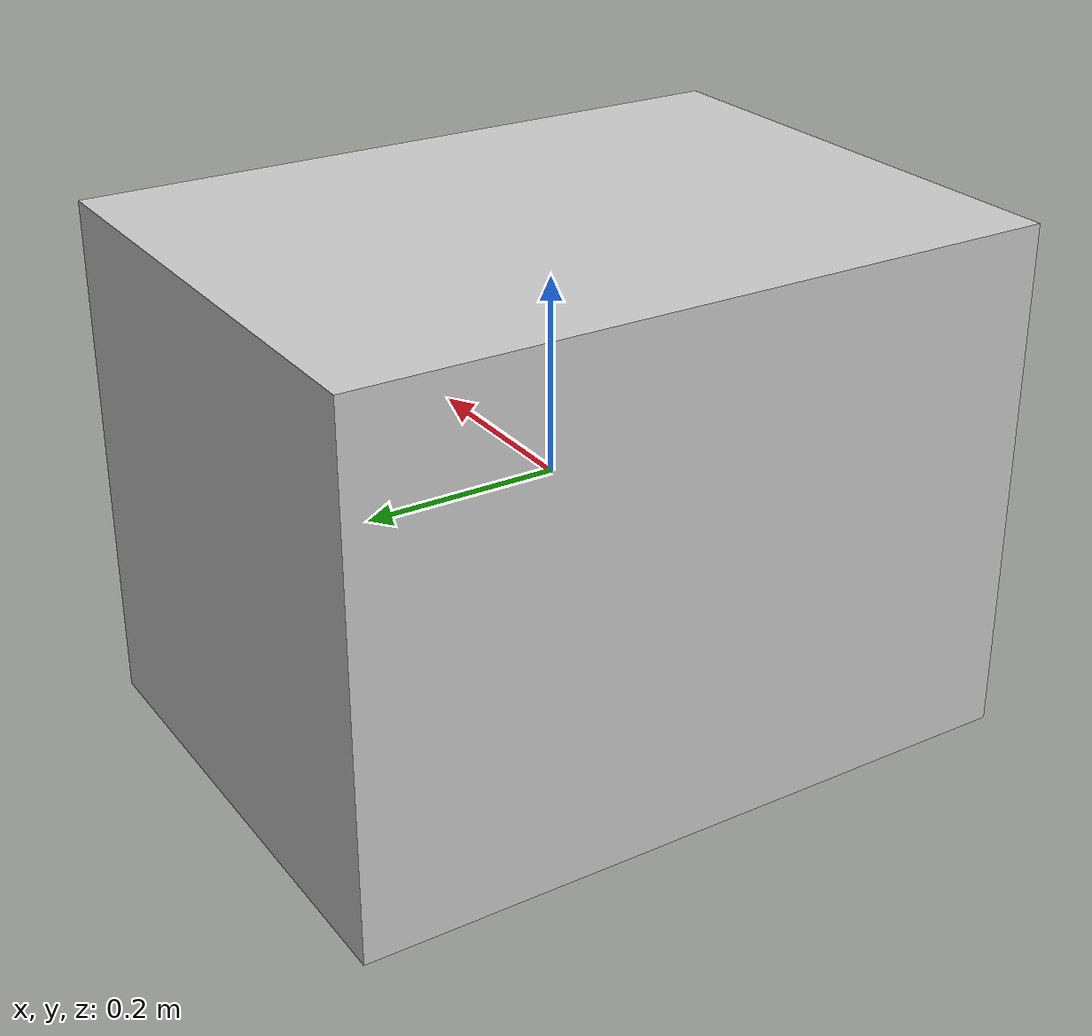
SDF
<?xml version='1.0'?>
<sdf version="1.9">
<model name="rover" canonical_link="Chassis_link">
  <joint name="Back Left Wheel Connection_link_joint" type="continuous">
    <pose relative_to="Left_Rocker_link">-0.040213 0.277630 -0.040843 -0.000000 1.570796 0.000000</pose>
    <parent>Left_Rocker_link</parent>
    <child>Back_Left_Wheel_Connection_link</child>
    <axis>
      <limit>
        <lower>0</lower>
        <upper>0</upper>
        <effort>0.000000</effort>
        <velocity>0.000000</velocity>
      </limit>
      <xyz>0.000000 0.000000 1.000000</xyz>
    </axis>
  </joint>
  <joint name="Back Left Wheel_link_joint" type="continuous">
    <pose relative_to="Back_Left_Wheel_Connection_link">-0.000277 -0.000140 -0.224216 0.000000 -1.570796 0.000000</pose>
    <parent>Back_Left_Wheel_Connection_link</parent>
    <child>Back_Left_Wheel_link</child>
    <axis>
      <limit>
        <lower>0</lower>
        <upper>0</upper>
        <effort>0.000000</effort>
        <velocity>0.000000</velocity>
      </limit>
      <xyz>0.000000 0.000000 1.000000</xyz>
    </axis>
  </joint>
  <joint name="Back Right Wheel_link_joint" type="continuous">
    <pose relative_to="Back_right_Wheel_Connection_link">-0.001001 -0.000072 -0.224364 0.000000 -1.570796 0.000000</pose>
    <parent>Back_right_Wheel_Connection_link</parent>
    <child>Back_Right_Wheel_link</child>
    <axis>
      <limit>
        <lower>0</lower>
        <upper>0</upper>
        <effort>0.000000</effort>
        <velocity>0.000000</velocity>
      </limit>
      <xyz>0.000000 0.000000 1.000000</xyz>
    </axis>
  </joint>
  <joint name="Back right Wheel Connection_link_joint" type="continuous">
    <pose relative_to="Right_Rocker_link">-0.039199 0.277668 0.039794 -0.000000 1.570796 0.000000</pose>
    <parent>Right_Rocker_link</parent>
    <child>Back_right_Wheel_Connection_link</child>
    <axis>
      <limit>
        <lower>0</lower>
        <upper>0</upper>
        <effort>0.000000</effort>
        <velocity>0.000000</velocity>
      </limit>
      <xyz>0.000000 0.000000 1.000000</xyz>
    </axis>
  </joint>
  <joint name="Front Left Wheel Connection_link_joint" type="continuous">
    <pose relative_to="Left_Rocker_link">-0.040213 -0.279250 -0.041051 -0.000000 1.570796 0.000000</pose>
    <parent>Left_Rocker_link</parent>
    <child>Front_Left_Wheel_Connection_link</child>
    <axis>
      <limit>
        <lower>0</lower>
        <upper>0</upper>
        <effort>0.000000</effort>
        <velocity>0.000000</velocity>
      </limit>
      <xyz>0.000000 0.000000 1.000000</xyz>
    </axis>
  </joint>
  <joint name="Front Left Wheel_link_joint" type="continuous">
    <pose relative_to="Front_Left_Wheel_Connection_link">-0.000405 0.000234 -0.224593 0.000000 -1.570796 0.000000</pose>
    <parent>Front_Left_Wheel_Connection_link</parent>
    <child>Front_Left_Wheel_link</child>
    <axis>
      <limit>
        <lower>0</lower>
        <upper>0</upper>
        <effort>0.000000</effort>
        <velocity>0.000000</velocity>
      </limit>
      <xyz>0.000000 0.000000 1.000000</xyz>
    </axis>
  </joint>
  <joint name="Front Right Wheel Connection_link_joint" type="continuous">
    <pose relative_to="Right_Rocker_link">-0.039199 -0.279811 0.039779 -0.000000 1.570796 0.000000</pose>
    <parent>Right_Rocker_link</parent>
    <child>Front_Right_Wheel_Connection_link</child>
    <axis>
      <limit>
        <lower>0</lower>
        <upper>0</upper>
        <effort>0.000000</effort>
        <velocity>0.000000</velocity>
      </limit>
      <xyz>0.000000 0.000000 1.000000</xyz>
    </axis>
  </joint>
  <joint name="Front Right Wheel_link_joint" type="continuous">
    <pose relative_to="Front_Right_Wheel_Connection_link">-0.001015 0.000984 -0.224364 -0.000000 -1.570796 0.000000</pose>
    <parent>Front_Right_Wheel_Connection_link</parent>
    <child>Front_Right_Wheel_link</child>
    <axis>
      <limit>
        <lower>0</lower>
        <upper>0</upper>
        <effort>0.000000</effort>
        <velocity>0.000000</velocity>
      </limit>
      <xyz>0.000000 0.000000 1.000000</xyz>
    </axis>
  </joint>
  <joint name="Left Rocker_link_joint" type="revolute">
    <pose relative_to="Chassis_link">0.316939 0.035009 -0.031693 0.000000 -1.570796 0.000000</pose>
    <parent>Chassis_link</parent>
    <child>Left_Rocker_link</child>
    <axis>
      <limit>
        <lower>-1.000000</lower>
        <upper>1.000000</upper>
        <effort>0.000000</effort>
        <velocity>0.000000</velocity>
      </limit>
      <xyz>0.000000 0.000000 1.000000</xyz>
    </axis>
  </joint>
  <joint name="Right Rocker_link_joint" type="revolute">
    <pose relative_to="Chassis_link">-0.326391 0.034904 -0.032707 0.000000 -1.570796 0.000000</pose>
    <parent>Chassis_link</parent>
    <child>Right_Rocker_link</child>
    <axis>
      <limit>
        <lower>-1.000000</lower>
        <upper>1.000000</upper>
        <effort>0.000000</effort>
        <velocity>0.000000</velocity>
      </limit>
      <xyz>0.000000 0.000000 1.000000</xyz>
    </axis>
  </joint>
  <link name="Back_Left_Wheel_Connection_link">
    <collision name="Back Left Wheel Connection_collision">
      <pose relative_to="Back_Left_Wheel_Connection_link">-0.000000 -0.000000 -0.000000 0.000000 0.000000 0.000000</pose>
      <geometry>
        <mesh>
          <uri>package://rover/meshes/dae/rover_assm.263.dae</uri>
          <scale>0.001020 0.001020 0.001020</scale>
        </mesh>
      </geometry>
      <surface>
        <contact/>
      </surface>
    </collision>
    <inertial>
      <inertia>
        <ixx>0.007968</ixx>
        <ixy>0.000000</ixy>
        <ixz>0.000000</ixz>
        <iyy>0.006673</iyy>
        <iyz>-0.002185</iyz>
        <izz>0.001483</izz>
      </inertia>
      <pose relative_to="Back_Left_Wheel_Connection_link">-0.034999 -0.000141 -0.080752 0.000000 0.000000 0.000000</pose>
      <mass>1.000000</mass>
    </inertial>
  </link>
  <link name="Back_Left_Wheel_link">
    <collision name="Back Left Wheel_collision">
      <pose relative_to="Back_Left_Wheel_link">-0.000149 -0.000000 -0.000229 -3.141593 -0.000000 -3.141593</pose>
      <geometry>
        <cylinder>
          <radius>0.152590</radius>
          <length>0.127483</length>
        </cylinder>
      </geometry>
      <surface>
        <contact/>
      </surface>
    </collision>
    <visual name="Back Left Wheel">
      <material>
        <diffuse>0.800000 0.800000 0.800000 1.000000</diffuse>
        <specular>0.400000 0.400000 0.400000 0.498039</specular>
        <emissive>0.000000 0.000000 0.000000 1.000000</emissive>
      </material>
      <pose relative_to="Back_Left_Wheel_link">-0.000148 -0.000000 -0.000229 -0.000000 1.570796 0.000000</pose>
      <geometry>
        <cylinder>
          <radius>0.063741</radius>
          <length>0.304673</length>
        </cylinder>
      </geometry>
    </visual>
  </link>
  <link name="Back_Right_Wheel_link">
    <collision name="Back Right Wheel_collision">
      <pose relative_to="Back_Right_Wheel_link">-0.000000 0.000000 0.000000 -3.141593 -0.000000 -3.141593</pose>
      <geometry>
        <cylinder>
          <radius>0.152590</radius>
          <length>0.127483</length>
        </cylinder>
      </geometry>
      <surface>
        <contact/>
      </surface>
    </collision>
    <visual name="Back Right Wheel">
      <material>
        <diffuse>0.800000 0.800000 0.800000 1.000000</diffuse>
        <specular>0.400000 0.400000 0.400000 0.498039</specular>
        <emissive>0.000000 0.000000 0.000000 1.000000</emissive>
      </material>
      <pose relative_to="Back_Right_Wheel_link">0.000000 0.000000 -0.000000 -0.000000 1.570796 0.000000</pose>
      <geometry>
        <cylinder>
          <radius>0.063741</radius>
          <length>0.304673</length>
        </cylinder>
      </geometry>
    </visual>
  </link>
  <link name="Back_right_Wheel_Connection_link">
    <collision name="Back right Wheel Connection_collision">
      <pose relative_to="Back_right_Wheel_Connection_link">-0.000000 0.000000 0.000000 0.000000 0.000000 0.000000</pose>
      <geometry>
        <mesh>
          <uri>package://rover/meshes/dae/rover_assm.273.dae</uri>
          <scale>0.001020 0.001020 0.001020</scale>
        </mesh>
      </geometry>
      <surface>
        <contact/>
      </surface>
    </collision>
    <inertial>
      <inertia>
        <ixx>0.007971</ixx>
        <ixy>0.000000</ixy>
        <ixz>-0.000000</ixz>
        <iyy>0.006675</iyy>
        <iyz>0.002187</iyz>
        <izz>0.001484</izz>
      </inertia>
      <pose relative_to="Back_right_Wheel_Connection_link">0.033951 -0.000071 -0.080752 0.000000 0.000000 0.000000</pose>
      <mass>1.000000</mass>
    </inertial>
  </link>
  <link name="Chassis_link">
    <collision name="Chassis_collision">
      <pose relative_to="Chassis_link">-0.000000 0.036421 0.000000 0.000000 0.000000 -0.000000</pose>
      <geometry>
        <box>
          <size>0.509469 0.629976 0.354739</size>
        </box>
      </geometry>
      <surface>
        <contact/>
      </surface>
    </collision>
    <inertial>
      <inertia>
        <ixx>0.045943</ixx>
        <ixy>-0.000000</ixy>
        <ixz>0.000000</ixz>
        <iyy>0.064649</iyy>
        <iyz>0.000000</iyz>
        <izz>0.064499</izz>
      </inertia>
      <pose relative_to="Chassis_link">0.000000 0.000000 0.000000 0.000000 0.000000 0.000000</pose>
      <mass>1.000000</mass>
    </inertial>
    <visual name="Chassis">
      <material>
        <diffuse>0.800000 0.800000 0.800000 1.000000</diffuse>
        <specular>0.011765 0.011765 0.011765 0.015686</specular>
        <emissive>0.000000 0.000000 0.000000 1.000000</emissive>
      </material>
      <pose relative_to="Chassis_link">0.000000 0.000000 0.000000 0.000000 0.000000 0.000000</pose>
      <geometry>
        <box>
          <size>0.524175 0.706562 0.525888</size>
        </box>
      </geometry>
    </visual>
  </link>
  <link name="Front_Left_Wheel_Connection_link">
    <collision name="Front Left Wheel Connection_collision">
      <pose relative_to="Front_Left_Wheel_Connection_link">0.000000 -0.000000 0.000000 0.000000 0.000000 0.000000</pose>
      <geometry>
        <mesh>
          <uri>file://rover/meshes/dae/rover_assm.266.dae</uri>
          <scale>0.001020 0.001020 0.001020</scale>
        </mesh>
      </geometry>
      <surface>
        <contact/>
      </surface>
    </collision>
    <inertial>
      <inertia>
        <ixx>0.007968</ixx>
        <ixy>0.000000</ixy>
        <ixz>0.000000</ixz>
        <iyy>0.006673</iyy>
        <iyz>-0.002185</iyz>
        <izz>0.001483</izz>
      </inertia>
      <pose relative_to="Front_Left_Wheel_Connection_link">-0.035207 0.000317 -0.080752 0.000000 0.000000 0.000000</pose>
      <mass>1.000000</mass>
    </inertial>
    <visual name="Front Left Wheel Connection">
      <material>
        <diffuse>0.800000 0.800000 0.800000 1.000000</diffuse>
        <specular>0.400000 0.400000 0.400000 0.498039</specular>
        <emissive>0.000000 0.000000 0.000000 1.000000</emissive>
      </material>
      <pose relative_to="Front_Left_Wheel_Connection_link">0.000000 -0.000000 0.000000 0.000000 0.000000 0.000000</pose>
      <geometry>
        <mesh>
          <uri>file://rover/meshes/dae/rover_assm.266.dae</uri>
          <scale>0.001020 0.001020 0.001020</scale>
        </mesh>
      </geometry>
    </visual>
  </link>
  <link name="Front_Left_Wheel_link">
    <collision name="Front Left Wheel_collision">
      <pose relative_to="Front_Left_Wheel_link">0.000149 -0.000000 0.000229 -3.141593 -0.000000 -3.141593</pose>
      <geometry>
        <cylinder>
          <radius>0.152957</radius>
          <length>0.127790</length>
        </cylinder>
      </geometry>
      <surface>
        <contact/>
      </surface>
    </collision>
    <inertial>
      <inertia>
        <ixx>0.008751</ixx>
        <ixy>-0.000000</ixy>
        <ixz>0.000000</ixz>
        <iyy>0.008751</iyy>
        <iyz>0.000000</iyz>
        <izz>0.002031</izz>
      </inertia>
      <pose relative_to="Front_Left_Wheel_link">0.000148 -0.000000 0.000229 0.000000 0.000000 0.000000</pose>
      <mass>1.000000</mass>
    </inertial>
    <visual name="Front Left Wheel">
      <material>
        <diffuse>0.800000 0.800000 0.800000 1.000000</diffuse>
        <specular>0.400000 0.400000 0.400000 0.498039</specular>
        <emissive>0.000000 0.000000 0.000000 1.000000</emissive>
      </material>
      <pose relative_to="Front_Left_Wheel_link">0.000149 -0.000000 0.000229 -0.000000 1.570796 0.000000</pose>
      <geometry>
        <cylinder>
          <radius>0.063742</radius>
          <length>0.304673</length>
        </cylinder>
      </geometry>
    </visual>
  </link>
  <link name="Front_Right_Wheel_Connection_link">
    <collision name="Front Right Wheel Connection_collision">
      <pose relative_to="Front_Right_Wheel_Connection_link">0.000000 -0.000000 0.000000 0.000000 0.000000 0.000000</pose>
      <geometry>
        <mesh>
          <uri>file://rover/meshes/dae/rover_assm.272.dae</uri>
          <scale>0.001020 0.001020 0.001020</scale>
        </mesh>
      </geometry>
      <surface>
        <contact/>
      </surface>
    </collision>
    <inertial>
      <inertia>
        <ixx>0.007971</ixx>
        <ixy>0.000000</ixy>
        <ixz>-0.000000</ixz>
        <iyy>0.006675</iyy>
        <iyz>0.002187</iyz>
        <izz>0.001484</izz>
      </inertia>
      <pose relative_to="Front_Right_Wheel_Connection_link">0.033936 0.000985 -0.080752 0.000000 0.000000 0.000000</pose>
      <mass>1.000000</mass>
    </inertial>
    <visual name="Front Right Wheel Connection">
      <material>
        <diffuse>0.800000 0.800000 0.800000 1.000000</diffuse>
        <specular>0.400000 0.400000 0.400000 0.498039</specular>
        <emissive>0.000000 0.000000 0.000000 1.000000</emissive>
      </material>
      <pose relative_to="Front_Right_Wheel_Connection_link">0.000000 -0.000000 0.000000 0.000000 0.000000 -0.000000</pose>
      <geometry>
        <mesh>
          <uri>file://rover/meshes/dae/rover_assm.272.dae</uri>
          <scale>0.001020 0.001020 0.001020</scale>
        </mesh>
      </geometry>
    </visual>
  </link>
  <link name="Front_Right_Wheel_link">
    <collision name="Front Right Wheel_collision">
      <pose relative_to="Front_Right_Wheel_link">-0.001154 -0.000002 -0.000037 0.000000 -0.000000 -0.000000</pose>
      <geometry>
        <cylinder>
          <radius>0.151841</radius>
          <length>0.126857</length>
        </cylinder>
      </geometry>
      <surface>
        <contact/>
      </surface>
    </collision>
    <inertial>
      <inertia>
        <ixx>0.008751</ixx>
        <ixy>0.000000</ixy>
        <ixz>0.000000</ixz>
        <iyy>0.008751</iyy>
        <iyz>-0.000000</iyz>
        <izz>0.002031</izz>
      </inertia>
      <pose relative_to="Front_Right_Wheel_link">0.000000 -0.000000 0.000000 0.000000 0.000000 0.000000</pose>
      <mass>1.000000</mass>
    </inertial>
    <visual name="Front Right Wheel">
      <material>
        <diffuse>0.800000 0.800000 0.800000 1.000000</diffuse>
        <specular>0.400000 0.400000 0.400000 0.498039</specular>
        <emissive>0.000000 0.000000 0.000000 1.000000</emissive>
      </material>
      <pose relative_to="Front_Right_Wheel_link">0.000000 -0.000000 0.000000 -0.000000 1.570796 0.000000</pose>
      <geometry>
        <cylinder>
          <radius>0.063741</radius>
          <length>0.304673</length>
        </cylinder>
      </geometry>
    </visual>
  </link>
  <link name="Left_Rocker_link">
    <collision name="Left Rocker_collision">
      <pose relative_to="Left_Rocker_link">-0.000000 -0.000000 0.000000 -0.000000 1.570796 0.000000</pose>
      <geometry>
        <mesh>
          <uri>file://rover/meshes/dae/rover_assm.277.dae</uri>
          <scale>0.001020 0.001020 0.001020</scale>
        </mesh>
      </geometry>
      <surface>
        <contact/>
      </surface>
    </collision>
    <inertial>
      <inertia>
        <ixx>0.001331</ixx>
        <ixy>-0.000094</ixy>
        <ixz>0.000210</ixz>
        <iyy>0.031629</iyy>
        <iyz>0.000565</iyz>
        <izz>0.031481</izz>
      </inertia>
      <pose relative_to="Left_Rocker_link">-0.042253 0.002366 -0.001819 0.000000 0.000000 0.000000</pose>
      <mass>1.000000</mass>
    </inertial>
    <visual name="Left Rocker">
      <material>
        <diffuse>0.800000 0.800000 0.800000 1.000000</diffuse>
        <specular>0.400000 0.400000 0.400000 0.498039</specular>
        <emissive>0.000000 0.000000 0.000000 1.000000</emissive>
      </material>
      <pose relative_to="Left_Rocker_link">-0.000000 -0.000000 0.000000 -0.000000 1.570796 0.000000</pose>
      <geometry>
        <mesh>
          <uri>file://rover/meshes/dae/rover_assm.277.dae</uri>
          <scale>0.001020 0.001020 0.001020</scale>
        </mesh>
      </geometry>
    </visual>
  </link>
  <link name="Right_Rocker_link">
    <collision name="Right Rocker_collision">
      <pose relative_to="Right_Rocker_link">-0.000000 0.000000 -0.000000 0.000000 1.570796 0.000000</pose>
      <geometry>
        <mesh>
          <uri>file://rover/meshes/dae/rover_assm.267.dae</uri>
          <scale>0.001020 0.001020 0.001020</scale>
        </mesh>
      </geometry>
      <surface>
        <contact/>
      </surface>
    </collision>
    <inertial>
      <inertia>
        <ixx>0.001330</ixx>
        <ixy>0.000096</ixy>
        <ixz>0.000215</ixz>
        <iyy>0.031632</iyy>
        <iyz>-0.000565</iyz>
        <izz>0.031485</izz>
      </inertia>
      <pose relative_to="Right_Rocker_link">-0.041239 0.002470 0.001819 0.000000 0.000000 0.000000</pose>
      <mass>1.000000</mass>
    </inertial>
    <visual name="Right Rocker">
      <material>
        <diffuse>0.800000 0.800000 0.800000 1.000000</diffuse>
        <specular>0.400000 0.400000 0.400000 0.498039</specular>
        <emissive>0.000000 0.000000 0.000000 1.000000</emissive>
      </material>
      <pose relative_to="Right_Rocker_link">-0.000000 0.000000 -0.000000 -0.000000 1.570796 0.000000</pose>
      <geometry>
        <mesh>
          <uri>file://rover/meshes/dae/rover_assm.267.dae</uri>
          <scale>0.001020 0.001020 0.001020</scale>
        </mesh>
      </geometry>
    </visual>
  </link>
</model>
</sdf>
